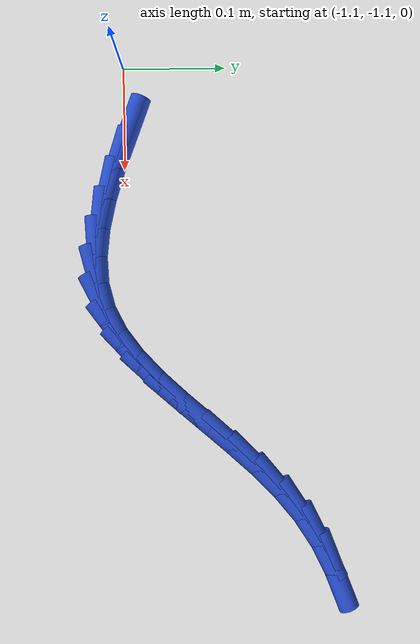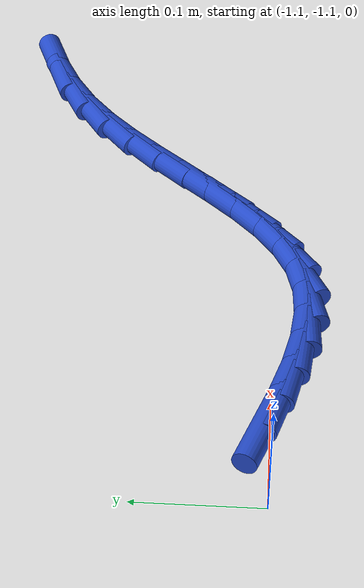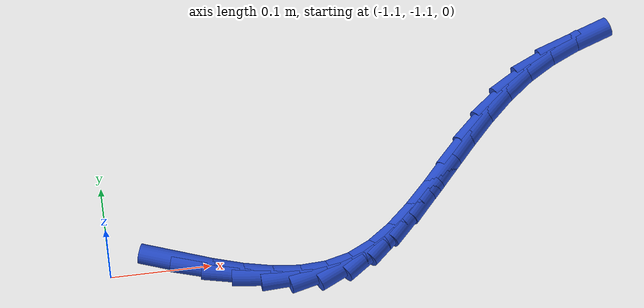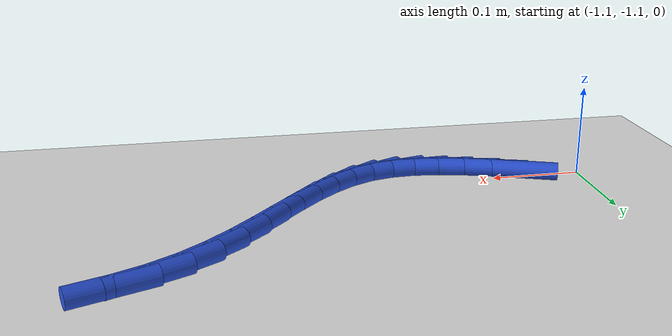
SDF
<sdf version="1.6">
 <world name="default">
  <model name="ground_plane">
   <static>1</static>
   <link name="link">
    <collision name="collision">
     <geometry><plane><normal>0 0 1</normal><size>100 100</size></plane></geometry>
     <surface><friction><ode><mu>100</mu><mu2>50</mu2></ode></friction></surface>
    </collision>
    <visual name="visual">
     <cast_shadows>0</cast_shadows>
     <geometry><plane><normal>0 0 1</normal><size>100 100</size></plane></geometry>
     <material>
      <script><uri>file://media/materials/scripts/gazebo.material</uri><name>Gazebo/WhiteGlow</name></script>
     </material>
    </visual>
   </link>
  </model>
  <model name="line">
   <link name="link_165">
    <pose>-1.0310198585653927 -1.0959876636521222 0.01 0 1.57 -0.35759847757731633</pose>
    <collision name="collision">
     <geometry><cylinder><radius>0.01</radius><length>0.08</length></cylinder></geometry>
    </collision>
    <visual name="visual">
     <material>
      <script><name>Gazebo/Blue</name><uri>file://media/materials/scripts/gazebo.material</uri></script>
     </material>
     <geometry><cylinder><radius>0.01</radius><length>0.08</length></cylinder></geometry>
    </visual>
   </link>
   <link name="link_166">
    <pose>-1.0002444035053843 -1.1074873295830923 0.01 0 1.57 -0.3052679842278514</pose>
    <collision name="collision">
     <geometry><cylinder><radius>0.01</radius><length>0.08</length></cylinder></geometry>
    </collision>
    <visual name="visual">
     <material>
      <script><name>Gazebo/Blue</name><uri>file://media/materials/scripts/gazebo.material</uri></script>
     </material>
     <geometry><cylinder><radius>0.01</radius><length>0.08</length></cylinder></geometry>
    </visual>
   </link>
   <link name="link_167">
    <pose>-0.9702077677834691 -1.1169524080460913 0.01 0 1.57 -0.22443484858811352</pose>
    <collision name="collision">
     <geometry><cylinder><radius>0.01</radius><length>0.08</length></cylinder></geometry>
    </collision>
    <visual name="visual">
     <material>
      <script><name>Gazebo/Blue</name><uri>file://media/materials/scripts/gazebo.material</uri></script>
     </material>
     <geometry><cylinder><radius>0.01</radius><length>0.08</length></cylinder></geometry>
    </visual>
   </link>
   <link name="link_168">
    <pose>-0.9410903762162399 -1.1235993463073237 0.01 0 1.57 -0.10826497140803189</pose>
    <collision name="collision">
     <geometry><cylinder><radius>0.01</radius><length>0.08</length></cylinder></geometry>
    </collision>
    <visual name="visual">
     <material>
      <script><name>Gazebo/Blue</name><uri>file://media/materials/scripts/gazebo.material</uri></script>
     </material>
     <geometry><cylinder><radius>0.01</radius><length>0.08</length></cylinder></geometry>
    </visual>
   </link>
   <link name="link_169">
    <pose>-0.9130726536202889 -1.1266445916329928 0.01 0 1.57 0.050074752612795245</pose>
    <collision name="collision">
     <geometry><cylinder><radius>0.01</radius><length>0.08</length></cylinder></geometry>
    </collision>
    <visual name="visual">
     <material>
      <script><name>Gazebo/Blue</name><uri>file://media/materials/scripts/gazebo.material</uri></script>
     </material>
     <geometry><cylinder><radius>0.01</radius><length>0.08</length></cylinder></geometry>
    </visual>
   </link>
   <link name="link_170">
    <pose>-0.886335024812211 -1.1253045912893043 0.01 0 1.57 0.2520038743880931</pose>
    <collision name="collision">
     <geometry><cylinder><radius>0.01</radius><length>0.08</length></cylinder></geometry>
    </collision>
    <visual name="visual">
     <material>
      <script><name>Gazebo/Blue</name><uri>file://media/materials/scripts/gazebo.material</uri></script>
     </material>
     <geometry><cylinder><radius>0.01</radius><length>0.08</length></cylinder></geometry>
    </visual>
   </link>
   <link name="link_171">
    <pose>-0.8610577701082212 -1.1187962658591515 0.01 0 1.57 0.4688890914318733</pose>
    <collision name="collision">
     <geometry><cylinder><radius>0.01</radius><length>0.08</length></cylinder></geometry>
    </collision>
    <visual name="visual">
     <material>
      <script><name>Gazebo/Blue</name><uri>file://media/materials/scripts/gazebo.material</uri></script>
     </material>
     <geometry><cylinder><radius>0.01</radius><length>0.08</length></cylinder></geometry>
    </visual>
   </link>
   <link name="link_172">
    <pose>-0.8372926283252817 -1.1067575786812158 0.01 0 1.57 0.6381496827818383</pose>
    <collision name="collision">
     <geometry><cylinder><radius>0.01</radius><length>0.08</length></cylinder></geometry>
    </collision>
    <visual name="visual">
     <material>
      <script><name>Gazebo/Blue</name><uri>file://media/materials/scripts/gazebo.material</uri></script>
     </material>
     <geometry><cylinder><radius>0.01</radius><length>0.08</length></cylinder></geometry>
    </visual>
   </link>
   <link name="link_173">
    <pose>-0.814726653425136 -1.090021032735665 0.01 0 1.57 0.7533108686793475</pose>
    <collision name="collision">
     <geometry><cylinder><radius>0.01</radius><length>0.08</length></cylinder></geometry>
    </collision>
    <visual name="visual">
     <material>
      <script><name>Gazebo/Blue</name><uri>file://media/materials/scripts/gazebo.material</uri></script>
     </material>
     <geometry><cylinder><radius>0.01</radius><length>0.08</length></cylinder></geometry>
    </visual>
   </link>
   <link name="link_174">
    <pose>-0.7929826675033397 -1.0696295250163197 0.01 0 1.57 0.8238508018173547</pose>
    <collision name="collision">
     <geometry><cylinder><radius>0.01</radius><length>0.08</length></cylinder></geometry>
    </collision>
    <visual name="visual">
     <material>
      <script><name>Gazebo/Blue</name><uri>file://media/materials/scripts/gazebo.material</uri></script>
     </material>
     <geometry><cylinder><radius>0.01</radius><length>0.08</length></cylinder></geometry>
    </visual>
   </link>
   <link name="link_175">
    <pose>-0.7716834926554493 -1.046625952517003 0.01 0 1.57 0.8582143096405578</pose>
    <collision name="collision">
     <geometry><cylinder><radius>0.01</radius><length>0.08</length></cylinder></geometry>
    </collision>
    <visual name="visual">
     <material>
      <script><name>Gazebo/Blue</name><uri>file://media/materials/scripts/gazebo.material</uri></script>
     </material>
     <geometry><cylinder><radius>0.01</radius><length>0.08</length></cylinder></geometry>
    </visual>
   </link>
   <link name="link_176">
    <pose>-0.75045195097702 -1.0220532122315342 0.01 0 1.57 0.8615353768371478</pose>
    <collision name="collision">
     <geometry><cylinder><radius>0.01</radius><length>0.08</length></cylinder></geometry>
    </collision>
    <visual name="visual">
     <material>
      <script><name>Gazebo/Blue</name><uri>file://media/materials/scripts/gazebo.material</uri></script>
     </material>
     <geometry><cylinder><radius>0.01</radius><length>0.08</length></cylinder></geometry>
    </visual>
   </link>
   <link name="link_177">
    <pose>-0.7289108645636078 -0.9969542011537361 0.01 0 1.57 0.8356562980759313</pose>
    <collision name="collision">
     <geometry><cylinder><radius>0.01</radius><length>0.08</length></cylinder></geometry>
    </collision>
    <visual name="visual">
     <material>
      <script><name>Gazebo/Blue</name><uri>file://media/materials/scripts/gazebo.material</uri></script>
     </material>
     <geometry><cylinder><radius>0.01</radius><length>0.08</length></cylinder></geometry>
    </visual>
   </link>
   <link name="link_178">
    <pose>-0.7066830555107676 -0.9723718162774285 0.01 0 1.57 0.7795934050101172</pose>
    <collision name="collision">
     <geometry><cylinder><radius>0.01</radius><length>0.08</length></cylinder></geometry>
    </collision>
    <visual name="visual">
     <material>
      <script><name>Gazebo/Blue</name><uri>file://media/materials/scripts/gazebo.material</uri></script>
     </material>
     <geometry><cylinder><radius>0.01</radius><length>0.08</length></cylinder></geometry>
    </visual>
   </link>
   <link name="link_179">
    <pose>-0.6833913459140563 -0.9493489545964338 0.01 0 1.57 0.6901822353742253</pose>
    <collision name="collision">
     <geometry><cylinder><radius>0.01</radius><length>0.08</length></cylinder></geometry>
    </collision>
    <visual name="visual">
     <material>
      <script><name>Gazebo/Blue</name><uri>file://media/materials/scripts/gazebo.material</uri></script>
     </material>
     <geometry><cylinder><radius>0.01</radius><length>0.08</length></cylinder></geometry>
    </visual>
   </link>
   <link name="link_180">
    <pose>-0.6586585578690293 -0.9289285131045728 0.01 0 1.57 0.5690020873161001</pose>
    <collision name="collision">
     <geometry><cylinder><radius>0.01</radius><length>0.08</length></cylinder></geometry>
    </collision>
    <visual name="visual">
     <material>
      <script><name>Gazebo/Blue</name><uri>file://media/materials/scripts/gazebo.material</uri></script>
     </material>
     <geometry><cylinder><radius>0.01</radius><length>0.08</length></cylinder></geometry>
    </visual>
   </link>
   <link name="link_181">
    <pose>-0.6321781393676102 -0.9119926554604728 0.01 0 1.57 0.4535909482761361</pose>
    <collision name="collision">
     <geometry><cylinder><radius>0.01</radius><length>0.08</length></cylinder></geometry>
    </collision>
    <visual name="visual">
     <material>
      <script><name>Gazebo/Blue</name><uri>file://media/materials/scripts/gazebo.material</uri></script>
     </material>
     <geometry><cylinder><radius>0.01</radius><length>0.08</length></cylinder></geometry>
    </visual>
   </link>
   <link name="link_182">
    <pose>-0.6041289194719797 -0.89831889501353 0.01 0 1.57 0.36282073239129264</pose>
    <collision name="collision">
     <geometry><cylinder><radius>0.01</radius><length>0.08</length></cylinder></geometry>
    </collision>
    <visual name="visual">
     <material>
      <script><name>Gazebo/Blue</name><uri>file://media/materials/scripts/gazebo.material</uri></script>
     </material>
     <geometry><cylinder><radius>0.01</radius><length>0.08</length></cylinder></geometry>
    </visual>
   </link>
  </model>
 </world>
</sdf>
